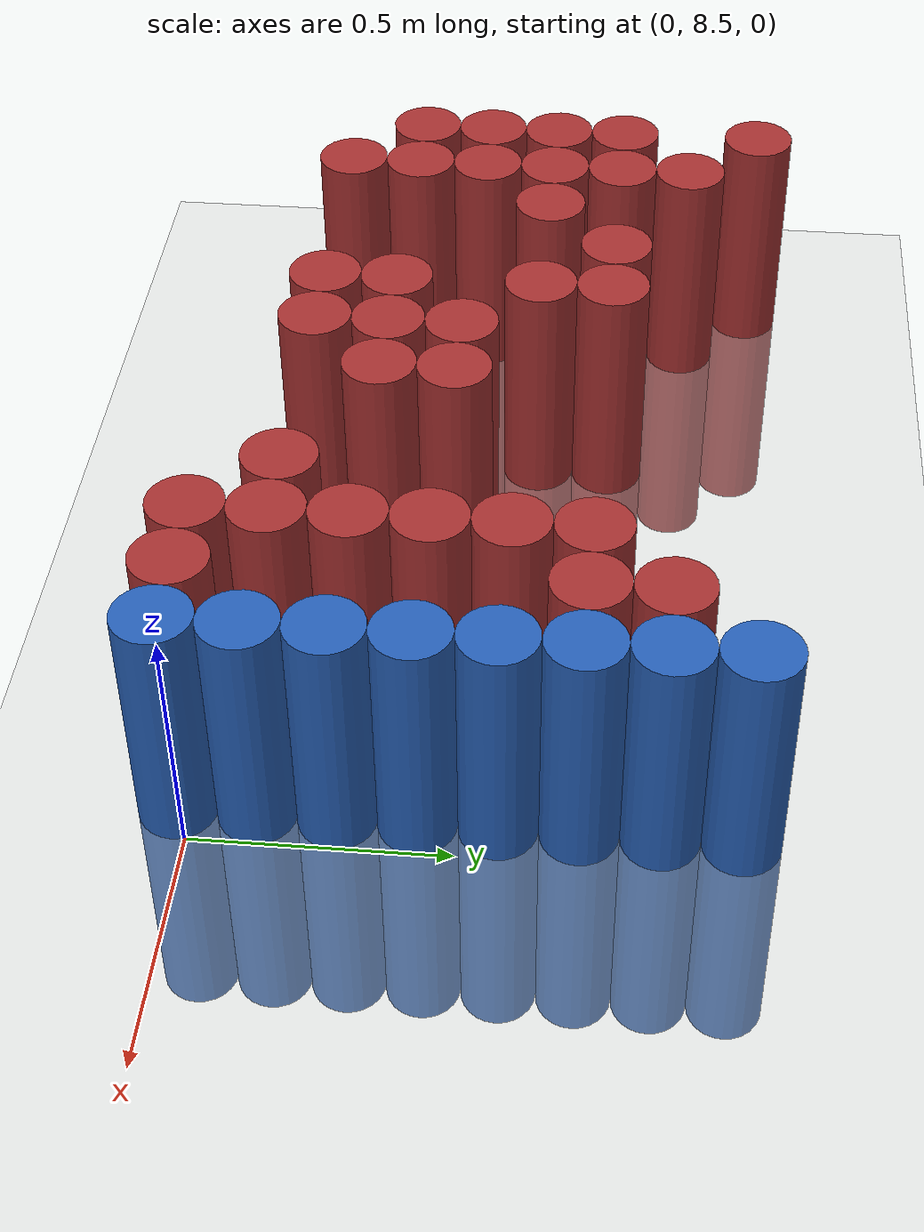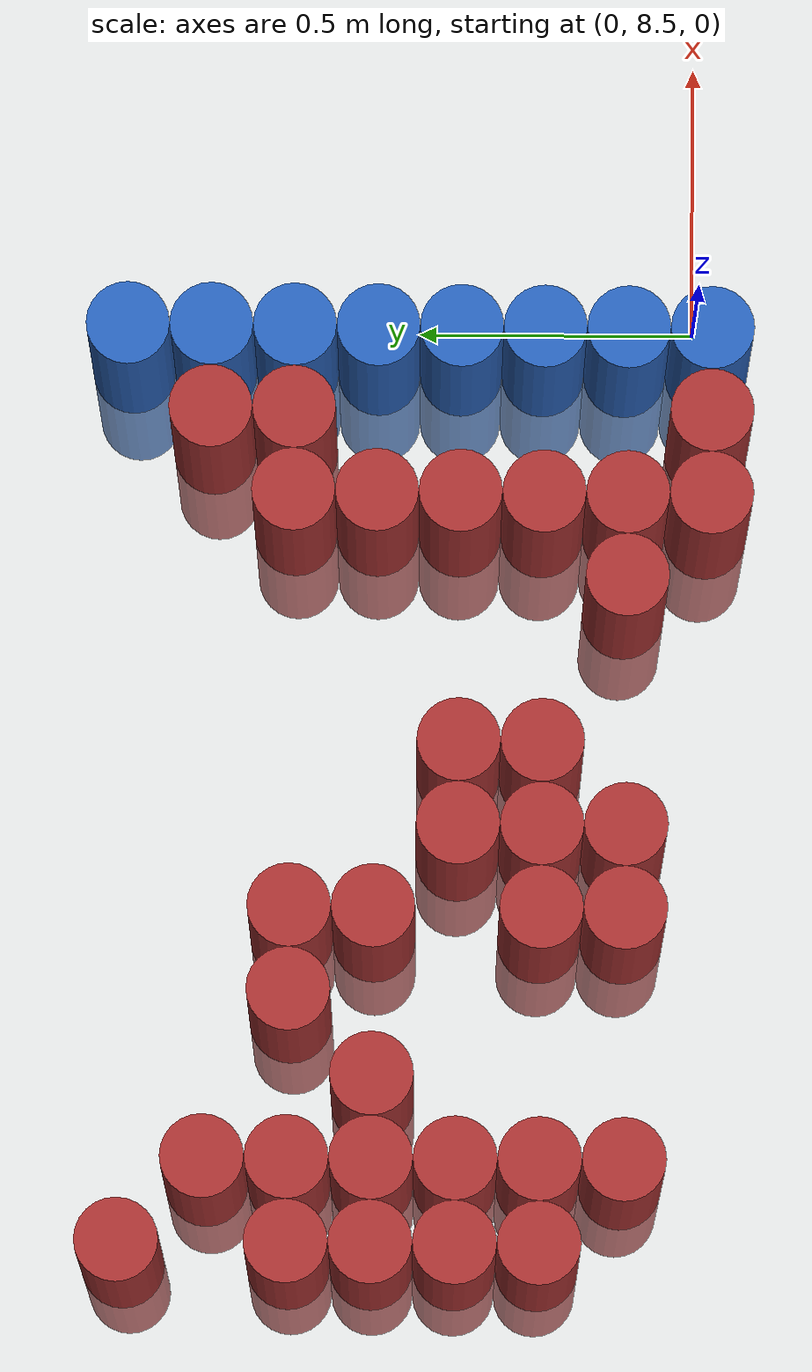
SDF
<sdf version="1.6">
 <world name="default">
  <model name="ground_plane">
   <static>1</static>
   <link name="link">
    <collision name="collision">
     <geometry><plane><normal>0 0 1</normal><size>100 100</size></plane></geometry>
     <surface><friction><ode><mu>100</mu><mu2>50</mu2></ode></friction></surface>
    </collision>
    <visual name="visual">
     <cast_shadows>0</cast_shadows>
     <geometry><plane><normal>0 0 1</normal><size>100 100</size></plane></geometry>
     <material>
      <script><uri>file://media/materials/scripts/gazebo.material</uri><name>Gazebo/Grey</name></script>
     </material>
    </visual>
   </link>
  </model>
  <model name="unit_cylinder_210">
   <static>1</static>
   <pose>-1.725000 8.775000 0.000000 0.000000 0.000000 0.000000</pose>
   <link name="link">
    <inertial>
     <mass>1</mass>
     <inertia><ixx>0.145833</ixx><ixy>0</ixy><ixz>0</ixz><iyy>0.145833</iyy><iyz>0</iyz><izz>0.125</izz></inertia>
    </inertial>
    <collision name="collision">
     <geometry><cylinder><radius>0.075000</radius><length>1</length></cylinder></geometry>
    </collision>
    <visual name="visual">
     <geometry><cylinder><radius>0.075000</radius><length>1</length></cylinder></geometry>
     <material>
      <ambient>0.648000 0.192000 0.192000 1</ambient>
      <diffuse>0.648000 0.192000 0.192000 1</diffuse>
     </material>
     <material>
      <script><name>Gazebo/Grey</name><uri>file://media/materials/scripts/gazebo.material</uri></script>
     </material>
    </visual>
    <sensor name="sensor_contact" type="contact"><contact><collision>collision</collision></contact></sensor>
   </link>
   <plugin filename="gz-sim-touchplugin-system" name="gz::sim::systems::TouchPlugin">
    <target>robot</target>
    <namespace>robot</namespace>
    <time>0.001</time>
    <enabled>true</enabled>
   </plugin>
  </model>
  <model name="unit_cylinder_211">
   <static>1</static>
   <pose>-1.725000 8.925000 0.000000 0.000000 0.000000 0.000000</pose>
   <link name="link">
    <inertial>
     <mass>1</mass>
     <inertia><ixx>0.145833</ixx><ixy>0</ixy><ixz>0</ixz><iyy>0.145833</iyy><iyz>0</iyz><izz>0.125</izz></inertia>
    </inertial>
    <collision name="collision">
     <geometry><cylinder><radius>0.075000</radius><length>1</length></cylinder></geometry>
    </collision>
    <visual name="visual">
     <geometry><cylinder><radius>0.075000</radius><length>1</length></cylinder></geometry>
     <material>
      <ambient>0.648000 0.192000 0.192000 1</ambient>
      <diffuse>0.648000 0.192000 0.192000 1</diffuse>
     </material>
     <material>
      <script><name>Gazebo/Grey</name><uri>file://media/materials/scripts/gazebo.material</uri></script>
     </material>
    </visual>
    <sensor name="sensor_contact" type="contact"><contact><collision>collision</collision></contact></sensor>
   </link>
   <plugin filename="gz-sim-touchplugin-system" name="gz::sim::systems::TouchPlugin">
    <target>robot</target>
    <namespace>robot</namespace>
    <time>0.001</time>
    <enabled>true</enabled>
   </plugin>
  </model>
  <model name="unit_cylinder_212">
   <static>1</static>
   <pose>-1.725000 9.075000 0.000000 0.000000 0.000000 0.000000</pose>
   <link name="link">
    <inertial>
     <mass>1</mass>
     <inertia><ixx>0.145833</ixx><ixy>0</ixy><ixz>0</ixz><iyy>0.145833</iyy><iyz>0</iyz><izz>0.125</izz></inertia>
    </inertial>
    <collision name="collision">
     <geometry><cylinder><radius>0.075000</radius><length>1</length></cylinder></geometry>
    </collision>
    <visual name="visual">
     <geometry><cylinder><radius>0.075000</radius><length>1</length></cylinder></geometry>
     <material>
      <ambient>0.648000 0.192000 0.192000 1</ambient>
      <diffuse>0.648000 0.192000 0.192000 1</diffuse>
     </material>
     <material>
      <script><name>Gazebo/Grey</name><uri>file://media/materials/scripts/gazebo.material</uri></script>
     </material>
    </visual>
    <sensor name="sensor_contact" type="contact"><contact><collision>collision</collision></contact></sensor>
   </link>
   <plugin filename="gz-sim-touchplugin-system" name="gz::sim::systems::TouchPlugin">
    <target>robot</target>
    <namespace>robot</namespace>
    <time>0.001</time>
    <enabled>true</enabled>
   </plugin>
  </model>
  <model name="unit_cylinder_213">
   <static>1</static>
   <pose>-1.725000 9.225000 0.000000 0.000000 0.000000 0.000000</pose>
   <link name="link">
    <inertial>
     <mass>1</mass>
     <inertia><ixx>0.145833</ixx><ixy>0</ixy><ixz>0</ixz><iyy>0.145833</iyy><iyz>0</iyz><izz>0.125</izz></inertia>
    </inertial>
    <collision name="collision">
     <geometry><cylinder><radius>0.075000</radius><length>1</length></cylinder></geometry>
    </collision>
    <visual name="visual">
     <geometry><cylinder><radius>0.075000</radius><length>1</length></cylinder></geometry>
     <material>
      <ambient>0.648000 0.192000 0.192000 1</ambient>
      <diffuse>0.648000 0.192000 0.192000 1</diffuse>
     </material>
     <material>
      <script><name>Gazebo/Grey</name><uri>file://media/materials/scripts/gazebo.material</uri></script>
     </material>
    </visual>
    <sensor name="sensor_contact" type="contact"><contact><collision>collision</collision></contact></sensor>
   </link>
   <plugin filename="gz-sim-touchplugin-system" name="gz::sim::systems::TouchPlugin">
    <target>robot</target>
    <namespace>robot</namespace>
    <time>0.001</time>
    <enabled>true</enabled>
   </plugin>
  </model>
  <model name="unit_cylinder_214">
   <static>1</static>
   <pose>-1.725000 9.525000 0.000000 0.000000 0.000000 0.000000</pose>
   <link name="link">
    <inertial>
     <mass>1</mass>
     <inertia><ixx>0.145833</ixx><ixy>0</ixy><ixz>0</ixz><iyy>0.145833</iyy><iyz>0</iyz><izz>0.125</izz></inertia>
    </inertial>
    <collision name="collision">
     <geometry><cylinder><radius>0.075000</radius><length>1</length></cylinder></geometry>
    </collision>
    <visual name="visual">
     <geometry><cylinder><radius>0.075000</radius><length>1</length></cylinder></geometry>
     <material>
      <ambient>0.648000 0.192000 0.192000 1</ambient>
      <diffuse>0.648000 0.192000 0.192000 1</diffuse>
     </material>
     <material>
      <script><name>Gazebo/Grey</name><uri>file://media/materials/scripts/gazebo.material</uri></script>
     </material>
    </visual>
    <sensor name="sensor_contact" type="contact"><contact><collision>collision</collision></contact></sensor>
   </link>
   <plugin filename="gz-sim-touchplugin-system" name="gz::sim::systems::TouchPlugin">
    <target>robot</target>
    <namespace>robot</namespace>
    <time>0.001</time>
    <enabled>true</enabled>
   </plugin>
  </model>
  <model name="unit_cylinder_218">
   <static>1</static>
   <pose>-1.575000 8.625000 0.000000 0.000000 0.000000 0.000000</pose>
   <link name="link">
    <inertial>
     <mass>1</mass>
     <inertia><ixx>0.145833</ixx><ixy>0</ixy><ixz>0</ixz><iyy>0.145833</iyy><iyz>0</iyz><izz>0.125</izz></inertia>
    </inertial>
    <collision name="collision">
     <geometry><cylinder><radius>0.075000</radius><length>1</length></cylinder></geometry>
    </collision>
    <visual name="visual">
     <geometry><cylinder><radius>0.075000</radius><length>1</length></cylinder></geometry>
     <material>
      <ambient>0.648000 0.192000 0.192000 1</ambient>
      <diffuse>0.648000 0.192000 0.192000 1</diffuse>
     </material>
     <material>
      <script><name>Gazebo/Grey</name><uri>file://media/materials/scripts/gazebo.material</uri></script>
     </material>
    </visual>
    <sensor name="sensor_contact" type="contact"><contact><collision>collision</collision></contact></sensor>
   </link>
   <plugin filename="gz-sim-touchplugin-system" name="gz::sim::systems::TouchPlugin">
    <target>robot</target>
    <namespace>robot</namespace>
    <time>0.001</time>
    <enabled>true</enabled>
   </plugin>
  </model>
  <model name="unit_cylinder_219">
   <static>1</static>
   <pose>-1.575000 8.775000 0.000000 0.000000 0.000000 0.000000</pose>
   <link name="link">
    <inertial>
     <mass>1</mass>
     <inertia><ixx>0.145833</ixx><ixy>0</ixy><ixz>0</ixz><iyy>0.145833</iyy><iyz>0</iyz><izz>0.125</izz></inertia>
    </inertial>
    <collision name="collision">
     <geometry><cylinder><radius>0.075000</radius><length>1</length></cylinder></geometry>
    </collision>
    <visual name="visual">
     <geometry><cylinder><radius>0.075000</radius><length>1</length></cylinder></geometry>
     <material>
      <ambient>0.648000 0.192000 0.192000 1</ambient>
      <diffuse>0.648000 0.192000 0.192000 1</diffuse>
     </material>
     <material>
      <script><name>Gazebo/Grey</name><uri>file://media/materials/scripts/gazebo.material</uri></script>
     </material>
    </visual>
    <sensor name="sensor_contact" type="contact"><contact><collision>collision</collision></contact></sensor>
   </link>
   <plugin filename="gz-sim-touchplugin-system" name="gz::sim::systems::TouchPlugin">
    <target>robot</target>
    <namespace>robot</namespace>
    <time>0.001</time>
    <enabled>true</enabled>
   </plugin>
  </model>
  <model name="unit_cylinder_220">
   <static>1</static>
   <pose>-1.575000 8.925000 0.000000 0.000000 0.000000 0.000000</pose>
   <link name="link">
    <inertial>
     <mass>1</mass>
     <inertia><ixx>0.145833</ixx><ixy>0</ixy><ixz>0</ixz><iyy>0.145833</iyy><iyz>0</iyz><izz>0.125</izz></inertia>
    </inertial>
    <collision name="collision">
     <geometry><cylinder><radius>0.075000</radius><length>1</length></cylinder></geometry>
    </collision>
    <visual name="visual">
     <geometry><cylinder><radius>0.075000</radius><length>1</length></cylinder></geometry>
     <material>
      <ambient>0.648000 0.192000 0.192000 1</ambient>
      <diffuse>0.648000 0.192000 0.192000 1</diffuse>
     </material>
     <material>
      <script><name>Gazebo/Grey</name><uri>file://media/materials/scripts/gazebo.material</uri></script>
     </material>
    </visual>
    <sensor name="sensor_contact" type="contact"><contact><collision>collision</collision></contact></sensor>
   </link>
   <plugin filename="gz-sim-touchplugin-system" name="gz::sim::systems::TouchPlugin">
    <target>robot</target>
    <namespace>robot</namespace>
    <time>0.001</time>
    <enabled>true</enabled>
   </plugin>
  </model>
  <model name="unit_cylinder_221">
   <static>1</static>
   <pose>-1.575000 9.075000 0.000000 0.000000 0.000000 0.000000</pose>
   <link name="link">
    <inertial>
     <mass>1</mass>
     <inertia><ixx>0.145833</ixx><ixy>0</ixy><ixz>0</ixz><iyy>0.145833</iyy><iyz>0</iyz><izz>0.125</izz></inertia>
    </inertial>
    <collision name="collision">
     <geometry><cylinder><radius>0.075000</radius><length>1</length></cylinder></geometry>
    </collision>
    <visual name="visual">
     <geometry><cylinder><radius>0.075000</radius><length>1</length></cylinder></geometry>
     <material>
      <ambient>0.648000 0.192000 0.192000 1</ambient>
      <diffuse>0.648000 0.192000 0.192000 1</diffuse>
     </material>
     <material>
      <script><name>Gazebo/Grey</name><uri>file://media/materials/scripts/gazebo.material</uri></script>
     </material>
    </visual>
    <sensor name="sensor_contact" type="contact"><contact><collision>collision</collision></contact></sensor>
   </link>
   <plugin filename="gz-sim-touchplugin-system" name="gz::sim::systems::TouchPlugin">
    <target>robot</target>
    <namespace>robot</namespace>
    <time>0.001</time>
    <enabled>true</enabled>
   </plugin>
  </model>
  <model name="unit_cylinder_222">
   <static>1</static>
   <pose>-1.575000 9.225000 0.000000 0.000000 0.000000 0.000000</pose>
   <link name="link">
    <inertial>
     <mass>1</mass>
     <inertia><ixx>0.145833</ixx><ixy>0</ixy><ixz>0</ixz><iyy>0.145833</iyy><iyz>0</iyz><izz>0.125</izz></inertia>
    </inertial>
    <collision name="collision">
     <geometry><cylinder><radius>0.075000</radius><length>1</length></cylinder></geometry>
    </collision>
    <visual name="visual">
     <geometry><cylinder><radius>0.075000</radius><length>1</length></cylinder></geometry>
     <material>
      <ambient>0.648000 0.192000 0.192000 1</ambient>
      <diffuse>0.648000 0.192000 0.192000 1</diffuse>
     </material>
     <material>
      <script><name>Gazebo/Grey</name><uri>file://media/materials/scripts/gazebo.material</uri></script>
     </material>
    </visual>
    <sensor name="sensor_contact" type="contact"><contact><collision>collision</collision></contact></sensor>
   </link>
   <plugin filename="gz-sim-touchplugin-system" name="gz::sim::systems::TouchPlugin">
    <target>robot</target>
    <namespace>robot</namespace>
    <time>0.001</time>
    <enabled>true</enabled>
   </plugin>
  </model>
  <model name="unit_cylinder_223">
   <static>1</static>
   <pose>-1.575000 9.375000 0.000000 0.000000 0.000000 0.000000</pose>
   <link name="link">
    <inertial>
     <mass>1</mass>
     <inertia><ixx>0.145833</ixx><ixy>0</ixy><ixz>0</ixz><iyy>0.145833</iyy><iyz>0</iyz><izz>0.125</izz></inertia>
    </inertial>
    <collision name="collision">
     <geometry><cylinder><radius>0.075000</radius><length>1</length></cylinder></geometry>
    </collision>
    <visual name="visual">
     <geometry><cylinder><radius>0.075000</radius><length>1</length></cylinder></geometry>
     <material>
      <ambient>0.648000 0.192000 0.192000 1</ambient>
      <diffuse>0.648000 0.192000 0.192000 1</diffuse>
     </material>
     <material>
      <script><name>Gazebo/Grey</name><uri>file://media/materials/scripts/gazebo.material</uri></script>
     </material>
    </visual>
    <sensor name="sensor_contact" type="contact"><contact><collision>collision</collision></contact></sensor>
   </link>
   <plugin filename="gz-sim-touchplugin-system" name="gz::sim::systems::TouchPlugin">
    <target>robot</target>
    <namespace>robot</namespace>
    <time>0.001</time>
    <enabled>true</enabled>
   </plugin>
  </model>
  <model name="unit_cylinder_232">
   <static>1</static>
   <pose>-1.425000 9.075000 0.000000 0.000000 0.000000 0.000000</pose>
   <link name="link">
    <inertial>
     <mass>1</mass>
     <inertia><ixx>0.145833</ixx><ixy>0</ixy><ixz>0</ixz><iyy>0.145833</iyy><iyz>0</iyz><izz>0.125</izz></inertia>
    </inertial>
    <collision name="collision">
     <geometry><cylinder><radius>0.075000</radius><length>1</length></cylinder></geometry>
    </collision>
    <visual name="visual">
     <geometry><cylinder><radius>0.075000</radius><length>1</length></cylinder></geometry>
     <material>
      <ambient>0.648000 0.192000 0.192000 1</ambient>
      <diffuse>0.648000 0.192000 0.192000 1</diffuse>
     </material>
     <material>
      <script><name>Gazebo/Grey</name><uri>file://media/materials/scripts/gazebo.material</uri></script>
     </material>
    </visual>
    <sensor name="sensor_contact" type="contact"><contact><collision>collision</collision></contact></sensor>
   </link>
   <plugin filename="gz-sim-touchplugin-system" name="gz::sim::systems::TouchPlugin">
    <target>robot</target>
    <namespace>robot</namespace>
    <time>0.001</time>
    <enabled>true</enabled>
   </plugin>
  </model>
  <model name="unit_cylinder_240">
   <static>1</static>
   <pose>-1.275000 9.225000 0.000000 0.000000 0.000000 0.000000</pose>
   <link name="link">
    <inertial>
     <mass>1</mass>
     <inertia><ixx>0.145833</ixx><ixy>0</ixy><ixz>0</ixz><iyy>0.145833</iyy><iyz>0</iyz><izz>0.125</izz></inertia>
    </inertial>
    <collision name="collision">
     <geometry><cylinder><radius>0.075000</radius><length>1</length></cylinder></geometry>
    </collision>
    <visual name="visual">
     <geometry><cylinder><radius>0.075000</radius><length>1</length></cylinder></geometry>
     <material>
      <ambient>0.648000 0.192000 0.192000 1</ambient>
      <diffuse>0.648000 0.192000 0.192000 1</diffuse>
     </material>
     <material>
      <script><name>Gazebo/Grey</name><uri>file://media/materials/scripts/gazebo.material</uri></script>
     </material>
    </visual>
    <sensor name="sensor_contact" type="contact"><contact><collision>collision</collision></contact></sensor>
   </link>
   <plugin filename="gz-sim-touchplugin-system" name="gz::sim::systems::TouchPlugin">
    <target>robot</target>
    <namespace>robot</namespace>
    <time>0.001</time>
    <enabled>true</enabled>
   </plugin>
  </model>
  <model name="unit_cylinder_244">
   <static>1</static>
   <pose>-1.125000 8.625000 0.000000 0.000000 0.000000 0.000000</pose>
   <link name="link">
    <inertial>
     <mass>1</mass>
     <inertia><ixx>0.145833</ixx><ixy>0</ixy><ixz>0</ixz><iyy>0.145833</iyy><iyz>0</iyz><izz>0.125</izz></inertia>
    </inertial>
    <collision name="collision">
     <geometry><cylinder><radius>0.075000</radius><length>1</length></cylinder></geometry>
    </collision>
    <visual name="visual">
     <geometry><cylinder><radius>0.075000</radius><length>1</length></cylinder></geometry>
     <material>
      <ambient>0.648000 0.192000 0.192000 1</ambient>
      <diffuse>0.648000 0.192000 0.192000 1</diffuse>
     </material>
     <material>
      <script><name>Gazebo/Grey</name><uri>file://media/materials/scripts/gazebo.material</uri></script>
     </material>
    </visual>
    <sensor name="sensor_contact" type="contact"><contact><collision>collision</collision></contact></sensor>
   </link>
   <plugin filename="gz-sim-touchplugin-system" name="gz::sim::systems::TouchPlugin">
    <target>robot</target>
    <namespace>robot</namespace>
    <time>0.001</time>
    <enabled>true</enabled>
   </plugin>
  </model>
  <model name="unit_cylinder_245">
   <static>1</static>
   <pose>-1.125000 8.775000 0.000000 0.000000 0.000000 0.000000</pose>
   <link name="link">
    <inertial>
     <mass>1</mass>
     <inertia><ixx>0.145833</ixx><ixy>0</ixy><ixz>0</ixz><iyy>0.145833</iyy><iyz>0</iyz><izz>0.125</izz></inertia>
    </inertial>
    <collision name="collision">
     <geometry><cylinder><radius>0.075000</radius><length>1</length></cylinder></geometry>
    </collision>
    <visual name="visual">
     <geometry><cylinder><radius>0.075000</radius><length>1</length></cylinder></geometry>
     <material>
      <ambient>0.648000 0.192000 0.192000 1</ambient>
      <diffuse>0.648000 0.192000 0.192000 1</diffuse>
     </material>
     <material>
      <script><name>Gazebo/Grey</name><uri>file://media/materials/scripts/gazebo.material</uri></script>
     </material>
    </visual>
    <sensor name="sensor_contact" type="contact"><contact><collision>collision</collision></contact></sensor>
   </link>
   <plugin filename="gz-sim-touchplugin-system" name="gz::sim::systems::TouchPlugin">
    <target>robot</target>
    <namespace>robot</namespace>
    <time>0.001</time>
    <enabled>true</enabled>
   </plugin>
  </model>
  <model name="unit_cylinder_246">
   <static>1</static>
   <pose>-1.125000 9.075000 0.000000 0.000000 0.000000 0.000000</pose>
   <link name="link">
    <inertial>
     <mass>1</mass>
     <inertia><ixx>0.145833</ixx><ixy>0</ixy><ixz>0</ixz><iyy>0.145833</iyy><iyz>0</iyz><izz>0.125</izz></inertia>
    </inertial>
    <collision name="collision">
     <geometry><cylinder><radius>0.075000</radius><length>1</length></cylinder></geometry>
    </collision>
    <visual name="visual">
     <geometry><cylinder><radius>0.075000</radius><length>1</length></cylinder></geometry>
     <material>
      <ambient>0.648000 0.192000 0.192000 1</ambient>
      <diffuse>0.648000 0.192000 0.192000 1</diffuse>
     </material>
     <material>
      <script><name>Gazebo/Grey</name><uri>file://media/materials/scripts/gazebo.material</uri></script>
     </material>
    </visual>
    <sensor name="sensor_contact" type="contact"><contact><collision>collision</collision></contact></sensor>
   </link>
   <plugin filename="gz-sim-touchplugin-system" name="gz::sim::systems::TouchPlugin">
    <target>robot</target>
    <namespace>robot</namespace>
    <time>0.001</time>
    <enabled>true</enabled>
   </plugin>
  </model>
  <model name="unit_cylinder_247">
   <static>1</static>
   <pose>-1.125000 9.225000 0.000000 0.000000 0.000000 0.000000</pose>
   <link name="link">
    <inertial>
     <mass>1</mass>
     <inertia><ixx>0.145833</ixx><ixy>0</ixy><ixz>0</ixz><iyy>0.145833</iyy><iyz>0</iyz><izz>0.125</izz></inertia>
    </inertial>
    <collision name="collision">
     <geometry><cylinder><radius>0.075000</radius><length>1</length></cylinder></geometry>
    </collision>
    <visual name="visual">
     <geometry><cylinder><radius>0.075000</radius><length>1</length></cylinder></geometry>
     <material>
      <ambient>0.648000 0.192000 0.192000 1</ambient>
      <diffuse>0.648000 0.192000 0.192000 1</diffuse>
     </material>
     <material>
      <script><name>Gazebo/Grey</name><uri>file://media/materials/scripts/gazebo.material</uri></script>
     </material>
    </visual>
    <sensor name="sensor_contact" type="contact"><contact><collision>collision</collision></contact></sensor>
   </link>
   <plugin filename="gz-sim-touchplugin-system" name="gz::sim::systems::TouchPlugin">
    <target>robot</target>
    <namespace>robot</namespace>
    <time>0.001</time>
    <enabled>true</enabled>
   </plugin>
  </model>
  <model name="unit_cylinder_249">
   <static>1</static>
   <pose>-0.975000 8.625000 0.000000 0.000000 0.000000 0.000000</pose>
   <link name="link">
    <inertial>
     <mass>1</mass>
     <inertia><ixx>0.145833</ixx><ixy>0</ixy><ixz>0</ixz><iyy>0.145833</iyy><iyz>0</iyz><izz>0.125</izz></inertia>
    </inertial>
    <collision name="collision">
     <geometry><cylinder><radius>0.075000</radius><length>1</length></cylinder></geometry>
    </collision>
    <visual name="visual">
     <geometry><cylinder><radius>0.075000</radius><length>1</length></cylinder></geometry>
     <material>
      <ambient>0.648000 0.192000 0.192000 1</ambient>
      <diffuse>0.648000 0.192000 0.192000 1</diffuse>
     </material>
     <material>
      <script><name>Gazebo/Grey</name><uri>file://media/materials/scripts/gazebo.material</uri></script>
     </material>
    </visual>
    <sensor name="sensor_contact" type="contact"><contact><collision>collision</collision></contact></sensor>
   </link>
   <plugin filename="gz-sim-touchplugin-system" name="gz::sim::systems::TouchPlugin">
    <target>robot</target>
    <namespace>robot</namespace>
    <time>0.001</time>
    <enabled>true</enabled>
   </plugin>
  </model>
  <model name="unit_cylinder_250">
   <static>1</static>
   <pose>-0.975000 8.775000 0.000000 0.000000 0.000000 0.000000</pose>
   <link name="link">
    <inertial>
     <mass>1</mass>
     <inertia><ixx>0.145833</ixx><ixy>0</ixy><ixz>0</ixz><iyy>0.145833</iyy><iyz>0</iyz><izz>0.125</izz></inertia>
    </inertial>
    <collision name="collision">
     <geometry><cylinder><radius>0.075000</radius><length>1</length></cylinder></geometry>
    </collision>
    <visual name="visual">
     <geometry><cylinder><radius>0.075000</radius><length>1</length></cylinder></geometry>
     <material>
      <ambient>0.648000 0.192000 0.192000 1</ambient>
      <diffuse>0.648000 0.192000 0.192000 1</diffuse>
     </material>
     <material>
      <script><name>Gazebo/Grey</name><uri>file://media/materials/scripts/gazebo.material</uri></script>
     </material>
    </visual>
    <sensor name="sensor_contact" type="contact"><contact><collision>collision</collision></contact></sensor>
   </link>
   <plugin filename="gz-sim-touchplugin-system" name="gz::sim::systems::TouchPlugin">
    <target>robot</target>
    <namespace>robot</namespace>
    <time>0.001</time>
    <enabled>true</enabled>
   </plugin>
  </model>
  <model name="unit_cylinder_251">
   <static>1</static>
   <pose>-0.975000 8.925000 0.000000 0.000000 0.000000 0.000000</pose>
   <link name="link">
    <inertial>
     <mass>1</mass>
     <inertia><ixx>0.145833</ixx><ixy>0</ixy><ixz>0</ixz><iyy>0.145833</iyy><iyz>0</iyz><izz>0.125</izz></inertia>
    </inertial>
    <collision name="collision">
     <geometry><cylinder><radius>0.075000</radius><length>1</length></cylinder></geometry>
    </collision>
    <visual name="visual">
     <geometry><cylinder><radius>0.075000</radius><length>1</length></cylinder></geometry>
     <material>
      <ambient>0.648000 0.192000 0.192000 1</ambient>
      <diffuse>0.648000 0.192000 0.192000 1</diffuse>
     </material>
     <material>
      <script><name>Gazebo/Grey</name><uri>file://media/materials/scripts/gazebo.material</uri></script>
     </material>
    </visual>
    <sensor name="sensor_contact" type="contact"><contact><collision>collision</collision></contact></sensor>
   </link>
   <plugin filename="gz-sim-touchplugin-system" name="gz::sim::systems::TouchPlugin">
    <target>robot</target>
    <namespace>robot</namespace>
    <time>0.001</time>
    <enabled>true</enabled>
   </plugin>
  </model>
  <model name="unit_cylinder_252">
   <static>1</static>
   <pose>-0.825000 8.775000 0.000000 0.000000 0.000000 0.000000</pose>
   <link name="link">
    <inertial>
     <mass>1</mass>
     <inertia><ixx>0.145833</ixx><ixy>0</ixy><ixz>0</ixz><iyy>0.145833</iyy><iyz>0</iyz><izz>0.125</izz></inertia>
    </inertial>
    <collision name="collision">
     <geometry><cylinder><radius>0.075000</radius><length>1</length></cylinder></geometry>
    </collision>
    <visual name="visual">
     <geometry><cylinder><radius>0.075000</radius><length>1</length></cylinder></geometry>
     <material>
      <ambient>0.648000 0.192000 0.192000 1</ambient>
      <diffuse>0.648000 0.192000 0.192000 1</diffuse>
     </material>
     <material>
      <script><name>Gazebo/Grey</name><uri>file://media/materials/scripts/gazebo.material</uri></script>
     </material>
    </visual>
    <sensor name="sensor_contact" type="contact"><contact><collision>collision</collision></contact></sensor>
   </link>
   <plugin filename="gz-sim-touchplugin-system" name="gz::sim::systems::TouchPlugin">
    <target>robot</target>
    <namespace>robot</namespace>
    <time>0.001</time>
    <enabled>true</enabled>
   </plugin>
  </model>
  <model name="unit_cylinder_253">
   <static>1</static>
   <pose>-0.825000 8.925000 0.000000 0.000000 0.000000 0.000000</pose>
   <link name="link">
    <inertial>
     <mass>1</mass>
     <inertia><ixx>0.145833</ixx><ixy>0</ixy><ixz>0</ixz><iyy>0.145833</iyy><iyz>0</iyz><izz>0.125</izz></inertia>
    </inertial>
    <collision name="collision">
     <geometry><cylinder><radius>0.075000</radius><length>1</length></cylinder></geometry>
    </collision>
    <visual name="visual">
     <geometry><cylinder><radius>0.075000</radius><length>1</length></cylinder></geometry>
     <material>
      <ambient>0.648000 0.192000 0.192000 1</ambient>
      <diffuse>0.648000 0.192000 0.192000 1</diffuse>
     </material>
     <material>
      <script><name>Gazebo/Grey</name><uri>file://media/materials/scripts/gazebo.material</uri></script>
     </material>
    </visual>
    <sensor name="sensor_contact" type="contact"><contact><collision>collision</collision></contact></sensor>
   </link>
   <plugin filename="gz-sim-touchplugin-system" name="gz::sim::systems::TouchPlugin">
    <target>robot</target>
    <namespace>robot</namespace>
    <time>0.001</time>
    <enabled>true</enabled>
   </plugin>
  </model>
  <model name="unit_cylinder_263">
   <static>1</static>
   <pose>-0.525000 8.625000 0.000000 0.000000 0.000000 0.000000</pose>
   <link name="link">
    <inertial>
     <mass>1</mass>
     <inertia><ixx>0.145833</ixx><ixy>0</ixy><ixz>0</ixz><iyy>0.145833</iyy><iyz>0</iyz><izz>0.125</izz></inertia>
    </inertial>
    <collision name="collision">
     <geometry><cylinder><radius>0.075000</radius><length>1</length></cylinder></geometry>
    </collision>
    <visual name="visual">
     <geometry><cylinder><radius>0.075000</radius><length>1</length></cylinder></geometry>
     <material>
      <ambient>0.648000 0.192000 0.192000 1</ambient>
      <diffuse>0.648000 0.192000 0.192000 1</diffuse>
     </material>
     <material>
      <script><name>Gazebo/Grey</name><uri>file://media/materials/scripts/gazebo.material</uri></script>
     </material>
    </visual>
    <sensor name="sensor_contact" type="contact"><contact><collision>collision</collision></contact></sensor>
   </link>
   <plugin filename="gz-sim-touchplugin-system" name="gz::sim::systems::TouchPlugin">
    <target>robot</target>
    <namespace>robot</namespace>
    <time>0.001</time>
    <enabled>true</enabled>
   </plugin>
  </model>
  <model name="unit_cylinder_271">
   <static>1</static>
   <pose>-0.375000 8.475000 0.000000 0.000000 0.000000 0.000000</pose>
   <link name="link">
    <inertial>
     <mass>1</mass>
     <inertia><ixx>0.145833</ixx><ixy>0</ixy><ixz>0</ixz><iyy>0.145833</iyy><iyz>0</iyz><izz>0.125</izz></inertia>
    </inertial>
    <collision name="collision">
     <geometry><cylinder><radius>0.075000</radius><length>1</length></cylinder></geometry>
    </collision>
    <visual name="visual">
     <geometry><cylinder><radius>0.075000</radius><length>1</length></cylinder></geometry>
     <material>
      <ambient>0.648000 0.192000 0.192000 1</ambient>
      <diffuse>0.648000 0.192000 0.192000 1</diffuse>
     </material>
     <material>
      <script><name>Gazebo/Grey</name><uri>file://media/materials/scripts/gazebo.material</uri></script>
     </material>
    </visual>
    <sensor name="sensor_contact" type="contact"><contact><collision>collision</collision></contact></sensor>
   </link>
   <plugin filename="gz-sim-touchplugin-system" name="gz::sim::systems::TouchPlugin">
    <target>robot</target>
    <namespace>robot</namespace>
    <time>0.001</time>
    <enabled>true</enabled>
   </plugin>
  </model>
  <model name="unit_cylinder_272">
   <static>1</static>
   <pose>-0.375000 8.625000 0.000000 0.000000 0.000000 0.000000</pose>
   <link name="link">
    <inertial>
     <mass>1</mass>
     <inertia><ixx>0.145833</ixx><ixy>0</ixy><ixz>0</ixz><iyy>0.145833</iyy><iyz>0</iyz><izz>0.125</izz></inertia>
    </inertial>
    <collision name="collision">
     <geometry><cylinder><radius>0.075000</radius><length>1</length></cylinder></geometry>
    </collision>
    <visual name="visual">
     <geometry><cylinder><radius>0.075000</radius><length>1</length></cylinder></geometry>
     <material>
      <ambient>0.648000 0.192000 0.192000 1</ambient>
      <diffuse>0.648000 0.192000 0.192000 1</diffuse>
     </material>
     <material>
      <script><name>Gazebo/Grey</name><uri>file://media/materials/scripts/gazebo.material</uri></script>
     </material>
    </visual>
    <sensor name="sensor_contact" type="contact"><contact><collision>collision</collision></contact></sensor>
   </link>
   <plugin filename="gz-sim-touchplugin-system" name="gz::sim::systems::TouchPlugin">
    <target>robot</target>
    <namespace>robot</namespace>
    <time>0.001</time>
    <enabled>true</enabled>
   </plugin>
  </model>
  <model name="unit_cylinder_273">
   <static>1</static>
   <pose>-0.375000 8.775000 0.000000 0.000000 0.000000 0.000000</pose>
   <link name="link">
    <inertial>
     <mass>1</mass>
     <inertia><ixx>0.145833</ixx><ixy>0</ixy><ixz>0</ixz><iyy>0.145833</iyy><iyz>0</iyz><izz>0.125</izz></inertia>
    </inertial>
    <collision name="collision">
     <geometry><cylinder><radius>0.075000</radius><length>1</length></cylinder></geometry>
    </collision>
    <visual name="visual">
     <geometry><cylinder><radius>0.075000</radius><length>1</length></cylinder></geometry>
     <material>
      <ambient>0.648000 0.192000 0.192000 1</ambient>
      <diffuse>0.648000 0.192000 0.192000 1</diffuse>
     </material>
     <material>
      <script><name>Gazebo/Grey</name><uri>file://media/materials/scripts/gazebo.material</uri></script>
     </material>
    </visual>
    <sensor name="sensor_contact" type="contact"><contact><collision>collision</collision></contact></sensor>
   </link>
   <plugin filename="gz-sim-touchplugin-system" name="gz::sim::systems::TouchPlugin">
    <target>robot</target>
    <namespace>robot</namespace>
    <time>0.001</time>
    <enabled>true</enabled>
   </plugin>
  </model>
  <model name="unit_cylinder_274">
   <static>1</static>
   <pose>-0.375000 8.925000 0.000000 0.000000 0.000000 0.000000</pose>
   <link name="link">
    <inertial>
     <mass>1</mass>
     <inertia><ixx>0.145833</ixx><ixy>0</ixy><ixz>0</ixz><iyy>0.145833</iyy><iyz>0</iyz><izz>0.125</izz></inertia>
    </inertial>
    <collision name="collision">
     <geometry><cylinder><radius>0.075000</radius><length>1</length></cylinder></geometry>
    </collision>
    <visual name="visual">
     <geometry><cylinder><radius>0.075000</radius><length>1</length></cylinder></geometry>
     <material>
      <ambient>0.648000 0.192000 0.192000 1</ambient>
      <diffuse>0.648000 0.192000 0.192000 1</diffuse>
     </material>
     <material>
      <script><name>Gazebo/Grey</name><uri>file://media/materials/scripts/gazebo.material</uri></script>
     </material>
    </visual>
    <sensor name="sensor_contact" type="contact"><contact><collision>collision</collision></contact></sensor>
   </link>
   <plugin filename="gz-sim-touchplugin-system" name="gz::sim::systems::TouchPlugin">
    <target>robot</target>
    <namespace>robot</namespace>
    <time>0.001</time>
    <enabled>true</enabled>
   </plugin>
  </model>
  <model name="unit_cylinder_275">
   <static>1</static>
   <pose>-0.375000 9.075000 0.000000 0.000000 0.000000 0.000000</pose>
   <link name="link">
    <inertial>
     <mass>1</mass>
     <inertia><ixx>0.145833</ixx><ixy>0</ixy><ixz>0</ixz><iyy>0.145833</iyy><iyz>0</iyz><izz>0.125</izz></inertia>
    </inertial>
    <collision name="collision">
     <geometry><cylinder><radius>0.075000</radius><length>1</length></cylinder></geometry>
    </collision>
    <visual name="visual">
     <geometry><cylinder><radius>0.075000</radius><length>1</length></cylinder></geometry>
     <material>
      <ambient>0.648000 0.192000 0.192000 1</ambient>
      <diffuse>0.648000 0.192000 0.192000 1</diffuse>
     </material>
     <material>
      <script><name>Gazebo/Grey</name><uri>file://media/materials/scripts/gazebo.material</uri></script>
     </material>
    </visual>
    <sensor name="sensor_contact" type="contact"><contact><collision>collision</collision></contact></sensor>
   </link>
   <plugin filename="gz-sim-touchplugin-system" name="gz::sim::systems::TouchPlugin">
    <target>robot</target>
    <namespace>robot</namespace>
    <time>0.001</time>
    <enabled>true</enabled>
   </plugin>
  </model>
  <model name="unit_cylinder_276">
   <static>1</static>
   <pose>-0.375000 9.225000 0.000000 0.000000 0.000000 0.000000</pose>
   <link name="link">
    <inertial>
     <mass>1</mass>
     <inertia><ixx>0.145833</ixx><ixy>0</ixy><ixz>0</ixz><iyy>0.145833</iyy><iyz>0</iyz><izz>0.125</izz></inertia>
    </inertial>
    <collision name="collision">
     <geometry><cylinder><radius>0.075000</radius><length>1</length></cylinder></geometry>
    </collision>
    <visual name="visual">
     <geometry><cylinder><radius>0.075000</radius><length>1</length></cylinder></geometry>
     <material>
      <ambient>0.648000 0.192000 0.192000 1</ambient>
      <diffuse>0.648000 0.192000 0.192000 1</diffuse>
     </material>
     <material>
      <script><name>Gazebo/Grey</name><uri>file://media/materials/scripts/gazebo.material</uri></script>
     </material>
    </visual>
    <sensor name="sensor_contact" type="contact"><contact><collision>collision</collision></contact></sensor>
   </link>
   <plugin filename="gz-sim-touchplugin-system" name="gz::sim::systems::TouchPlugin">
    <target>robot</target>
    <namespace>robot</namespace>
    <time>0.001</time>
    <enabled>true</enabled>
   </plugin>
  </model>
  <model name="unit_cylinder_288">
   <static>1</static>
   <pose>-0.225000 8.475000 0.000000 0.000000 0.000000 0.000000</pose>
   <link name="link">
    <inertial>
     <mass>1</mass>
     <inertia><ixx>0.145833</ixx><ixy>0</ixy><ixz>0</ixz><iyy>0.145833</iyy><iyz>0</iyz><izz>0.125</izz></inertia>
    </inertial>
    <collision name="collision">
     <geometry><cylinder><radius>0.075000</radius><length>1</length></cylinder></geometry>
    </collision>
    <visual name="visual">
     <geometry><cylinder><radius>0.075000</radius><length>1</length></cylinder></geometry>
     <material>
      <ambient>0.648000 0.192000 0.192000 1</ambient>
      <diffuse>0.648000 0.192000 0.192000 1</diffuse>
     </material>
     <material>
      <script><name>Gazebo/Grey</name><uri>file://media/materials/scripts/gazebo.material</uri></script>
     </material>
    </visual>
    <sensor name="sensor_contact" type="contact"><contact><collision>collision</collision></contact></sensor>
   </link>
   <plugin filename="gz-sim-touchplugin-system" name="gz::sim::systems::TouchPlugin">
    <target>robot</target>
    <namespace>robot</namespace>
    <time>0.001</time>
    <enabled>true</enabled>
   </plugin>
  </model>
  <model name="unit_cylinder_289">
   <static>1</static>
   <pose>-0.225000 9.225000 0.000000 0.000000 0.000000 0.000000</pose>
   <link name="link">
    <inertial>
     <mass>1</mass>
     <inertia><ixx>0.145833</ixx><ixy>0</ixy><ixz>0</ixz><iyy>0.145833</iyy><iyz>0</iyz><izz>0.125</izz></inertia>
    </inertial>
    <collision name="collision">
     <geometry><cylinder><radius>0.075000</radius><length>1</length></cylinder></geometry>
    </collision>
    <visual name="visual">
     <geometry><cylinder><radius>0.075000</radius><length>1</length></cylinder></geometry>
     <material>
      <ambient>0.648000 0.192000 0.192000 1</ambient>
      <diffuse>0.648000 0.192000 0.192000 1</diffuse>
     </material>
     <material>
      <script><name>Gazebo/Grey</name><uri>file://media/materials/scripts/gazebo.material</uri></script>
     </material>
    </visual>
    <sensor name="sensor_contact" type="contact"><contact><collision>collision</collision></contact></sensor>
   </link>
   <plugin filename="gz-sim-touchplugin-system" name="gz::sim::systems::TouchPlugin">
    <target>robot</target>
    <namespace>robot</namespace>
    <time>0.001</time>
    <enabled>true</enabled>
   </plugin>
  </model>
  <model name="unit_cylinder_290">
   <static>1</static>
   <pose>-0.225000 9.375000 0.000000 0.000000 0.000000 0.000000</pose>
   <link name="link">
    <inertial>
     <mass>1</mass>
     <inertia><ixx>0.145833</ixx><ixy>0</ixy><ixz>0</ixz><iyy>0.145833</iyy><iyz>0</iyz><izz>0.125</izz></inertia>
    </inertial>
    <collision name="collision">
     <geometry><cylinder><radius>0.075000</radius><length>1</length></cylinder></geometry>
    </collision>
    <visual name="visual">
     <geometry><cylinder><radius>0.075000</radius><length>1</length></cylinder></geometry>
     <material>
      <ambient>0.648000 0.192000 0.192000 1</ambient>
      <diffuse>0.648000 0.192000 0.192000 1</diffuse>
     </material>
     <material>
      <script><name>Gazebo/Grey</name><uri>file://media/materials/scripts/gazebo.material</uri></script>
     </material>
    </visual>
    <sensor name="sensor_contact" type="contact"><contact><collision>collision</collision></contact></sensor>
   </link>
   <plugin filename="gz-sim-touchplugin-system" name="gz::sim::systems::TouchPlugin">
    <target>robot</target>
    <namespace>robot</namespace>
    <time>0.001</time>
    <enabled>true</enabled>
   </plugin>
  </model>
  <model name="unit_cylinder_313">
   <static>1</static>
   <pose>-0.075000 8.475000 0.000000 0.000000 0.000000 0.000000</pose>
   <link name="link">
    <inertial>
     <mass>1</mass>
     <inertia><ixx>0.145833</ixx><ixy>0</ixy><ixz>0</ixz><iyy>0.145833</iyy><iyz>0</iyz><izz>0.125</izz></inertia>
    </inertial>
    <collision name="collision">
     <geometry><cylinder><radius>0.075000</radius><length>1</length></cylinder></geometry>
    </collision>
    <visual name="visual">
     <geometry><cylinder><radius>0.075000</radius><length>1</length></cylinder></geometry>
     <material>
      <ambient>0.152000 0.379000 0.720000 1</ambient>
      <diffuse>0.152000 0.379000 0.720000 1</diffuse>
     </material>
     <material>
      <script><name>Gazebo/Grey</name><uri>file://media/materials/scripts/gazebo.material</uri></script>
     </material>
    </visual>
    <sensor name="sensor_contact" type="contact"><contact><collision>collision</collision></contact></sensor>
   </link>
   <plugin filename="gz-sim-touchplugin-system" name="gz::sim::systems::TouchPlugin">
    <target>robot</target>
    <namespace>robot</namespace>
    <time>0.001</time>
    <enabled>true</enabled>
   </plugin>
  </model>
  <model name="unit_cylinder_314">
   <static>1</static>
   <pose>-0.075000 8.625000 0.000000 0.000000 0.000000 0.000000</pose>
   <link name="link">
    <inertial>
     <mass>1</mass>
     <inertia><ixx>0.145833</ixx><ixy>0</ixy><ixz>0</ixz><iyy>0.145833</iyy><iyz>0</iyz><izz>0.125</izz></inertia>
    </inertial>
    <collision name="collision">
     <geometry><cylinder><radius>0.075000</radius><length>1</length></cylinder></geometry>
    </collision>
    <visual name="visual">
     <geometry><cylinder><radius>0.075000</radius><length>1</length></cylinder></geometry>
     <material>
      <ambient>0.152000 0.379000 0.720000 1</ambient>
      <diffuse>0.152000 0.379000 0.720000 1</diffuse>
     </material>
     <material>
      <script><name>Gazebo/Grey</name><uri>file://media/materials/scripts/gazebo.material</uri></script>
     </material>
    </visual>
    <sensor name="sensor_contact" type="contact"><contact><collision>collision</collision></contact></sensor>
   </link>
   <plugin filename="gz-sim-touchplugin-system" name="gz::sim::systems::TouchPlugin">
    <target>robot</target>
    <namespace>robot</namespace>
    <time>0.001</time>
    <enabled>true</enabled>
   </plugin>
  </model>
  <model name="unit_cylinder_315">
   <static>1</static>
   <pose>-0.075000 8.775000 0.000000 0.000000 0.000000 0.000000</pose>
   <link name="link">
    <inertial>
     <mass>1</mass>
     <inertia><ixx>0.145833</ixx><ixy>0</ixy><ixz>0</ixz><iyy>0.145833</iyy><iyz>0</iyz><izz>0.125</izz></inertia>
    </inertial>
    <collision name="collision">
     <geometry><cylinder><radius>0.075000</radius><length>1</length></cylinder></geometry>
    </collision>
    <visual name="visual">
     <geometry><cylinder><radius>0.075000</radius><length>1</length></cylinder></geometry>
     <material>
      <ambient>0.152000 0.379000 0.720000 1</ambient>
      <diffuse>0.152000 0.379000 0.720000 1</diffuse>
     </material>
     <material>
      <script><name>Gazebo/Grey</name><uri>file://media/materials/scripts/gazebo.material</uri></script>
     </material>
    </visual>
    <sensor name="sensor_contact" type="contact"><contact><collision>collision</collision></contact></sensor>
   </link>
   <plugin filename="gz-sim-touchplugin-system" name="gz::sim::systems::TouchPlugin">
    <target>robot</target>
    <namespace>robot</namespace>
    <time>0.001</time>
    <enabled>true</enabled>
   </plugin>
  </model>
  <model name="unit_cylinder_316">
   <static>1</static>
   <pose>-0.075000 8.925000 0.000000 0.000000 0.000000 0.000000</pose>
   <link name="link">
    <inertial>
     <mass>1</mass>
     <inertia><ixx>0.145833</ixx><ixy>0</ixy><ixz>0</ixz><iyy>0.145833</iyy><iyz>0</iyz><izz>0.125</izz></inertia>
    </inertial>
    <collision name="collision">
     <geometry><cylinder><radius>0.075000</radius><length>1</length></cylinder></geometry>
    </collision>
    <visual name="visual">
     <geometry><cylinder><radius>0.075000</radius><length>1</length></cylinder></geometry>
     <material>
      <ambient>0.152000 0.379000 0.720000 1</ambient>
      <diffuse>0.152000 0.379000 0.720000 1</diffuse>
     </material>
     <material>
      <script><name>Gazebo/Grey</name><uri>file://media/materials/scripts/gazebo.material</uri></script>
     </material>
    </visual>
    <sensor name="sensor_contact" type="contact"><contact><collision>collision</collision></contact></sensor>
   </link>
   <plugin filename="gz-sim-touchplugin-system" name="gz::sim::systems::TouchPlugin">
    <target>robot</target>
    <namespace>robot</namespace>
    <time>0.001</time>
    <enabled>true</enabled>
   </plugin>
  </model>
  <model name="unit_cylinder_317">
   <static>1</static>
   <pose>-0.075000 9.075000 0.000000 0.000000 0.000000 0.000000</pose>
   <link name="link">
    <inertial>
     <mass>1</mass>
     <inertia><ixx>0.145833</ixx><ixy>0</ixy><ixz>0</ixz><iyy>0.145833</iyy><iyz>0</iyz><izz>0.125</izz></inertia>
    </inertial>
    <collision name="collision">
     <geometry><cylinder><radius>0.075000</radius><length>1</length></cylinder></geometry>
    </collision>
    <visual name="visual">
     <geometry><cylinder><radius>0.075000</radius><length>1</length></cylinder></geometry>
     <material>
      <ambient>0.152000 0.379000 0.720000 1</ambient>
      <diffuse>0.152000 0.379000 0.720000 1</diffuse>
     </material>
     <material>
      <script><name>Gazebo/Grey</name><uri>file://media/materials/scripts/gazebo.material</uri></script>
     </material>
    </visual>
    <sensor name="sensor_contact" type="contact"><contact><collision>collision</collision></contact></sensor>
   </link>
   <plugin filename="gz-sim-touchplugin-system" name="gz::sim::systems::TouchPlugin">
    <target>robot</target>
    <namespace>robot</namespace>
    <time>0.001</time>
    <enabled>true</enabled>
   </plugin>
  </model>
  <model name="unit_cylinder_318">
   <static>1</static>
   <pose>-0.075000 9.225000 0.000000 0.000000 0.000000 0.000000</pose>
   <link name="link">
    <inertial>
     <mass>1</mass>
     <inertia><ixx>0.145833</ixx><ixy>0</ixy><ixz>0</ixz><iyy>0.145833</iyy><iyz>0</iyz><izz>0.125</izz></inertia>
    </inertial>
    <collision name="collision">
     <geometry><cylinder><radius>0.075000</radius><length>1</length></cylinder></geometry>
    </collision>
    <visual name="visual">
     <geometry><cylinder><radius>0.075000</radius><length>1</length></cylinder></geometry>
     <material>
      <ambient>0.152000 0.379000 0.720000 1</ambient>
      <diffuse>0.152000 0.379000 0.720000 1</diffuse>
     </material>
     <material>
      <script><name>Gazebo/Grey</name><uri>file://media/materials/scripts/gazebo.material</uri></script>
     </material>
    </visual>
    <sensor name="sensor_contact" type="contact"><contact><collision>collision</collision></contact></sensor>
   </link>
   <plugin filename="gz-sim-touchplugin-system" name="gz::sim::systems::TouchPlugin">
    <target>robot</target>
    <namespace>robot</namespace>
    <time>0.001</time>
    <enabled>true</enabled>
   </plugin>
  </model>
  <model name="unit_cylinder_319">
   <static>1</static>
   <pose>-0.075000 9.375000 0.000000 0.000000 0.000000 0.000000</pose>
   <link name="link">
    <inertial>
     <mass>1</mass>
     <inertia><ixx>0.145833</ixx><ixy>0</ixy><ixz>0</ixz><iyy>0.145833</iyy><iyz>0</iyz><izz>0.125</izz></inertia>
    </inertial>
    <collision name="collision">
     <geometry><cylinder><radius>0.075000</radius><length>1</length></cylinder></geometry>
    </collision>
    <visual name="visual">
     <geometry><cylinder><radius>0.075000</radius><length>1</length></cylinder></geometry>
     <material>
      <ambient>0.152000 0.379000 0.720000 1</ambient>
      <diffuse>0.152000 0.379000 0.720000 1</diffuse>
     </material>
     <material>
      <script><name>Gazebo/Grey</name><uri>file://media/materials/scripts/gazebo.material</uri></script>
     </material>
    </visual>
    <sensor name="sensor_contact" type="contact"><contact><collision>collision</collision></contact></sensor>
   </link>
   <plugin filename="gz-sim-touchplugin-system" name="gz::sim::systems::TouchPlugin">
    <target>robot</target>
    <namespace>robot</namespace>
    <time>0.001</time>
    <enabled>true</enabled>
   </plugin>
  </model>
  <model name="unit_cylinder_320">
   <static>1</static>
   <pose>-0.075000 9.525000 0.000000 0.000000 0.000000 0.000000</pose>
   <link name="link">
    <inertial>
     <mass>1</mass>
     <inertia><ixx>0.145833</ixx><ixy>0</ixy><ixz>0</ixz><iyy>0.145833</iyy><iyz>0</iyz><izz>0.125</izz></inertia>
    </inertial>
    <collision name="collision">
     <geometry><cylinder><radius>0.075000</radius><length>1</length></cylinder></geometry>
    </collision>
    <visual name="visual">
     <geometry><cylinder><radius>0.075000</radius><length>1</length></cylinder></geometry>
     <material>
      <ambient>0.152000 0.379000 0.720000 1</ambient>
      <diffuse>0.152000 0.379000 0.720000 1</diffuse>
     </material>
     <material>
      <script><name>Gazebo/Grey</name><uri>file://media/materials/scripts/gazebo.material</uri></script>
     </material>
    </visual>
    <sensor name="sensor_contact" type="contact"><contact><collision>collision</collision></contact></sensor>
   </link>
   <plugin filename="gz-sim-touchplugin-system" name="gz::sim::systems::TouchPlugin">
    <target>robot</target>
    <namespace>robot</namespace>
    <time>0.001</time>
    <enabled>true</enabled>
   </plugin>
  </model>
 </world>
</sdf>
